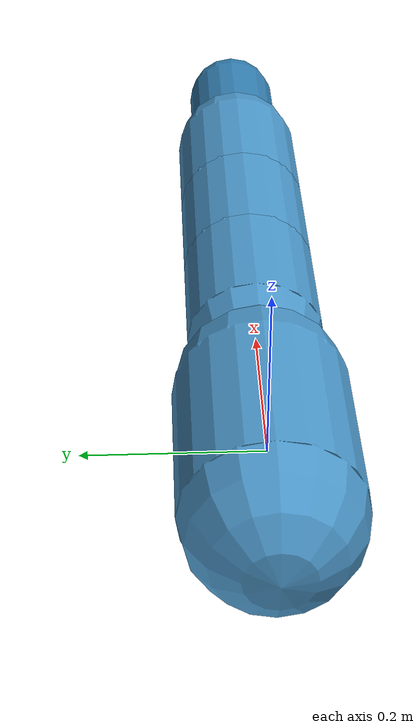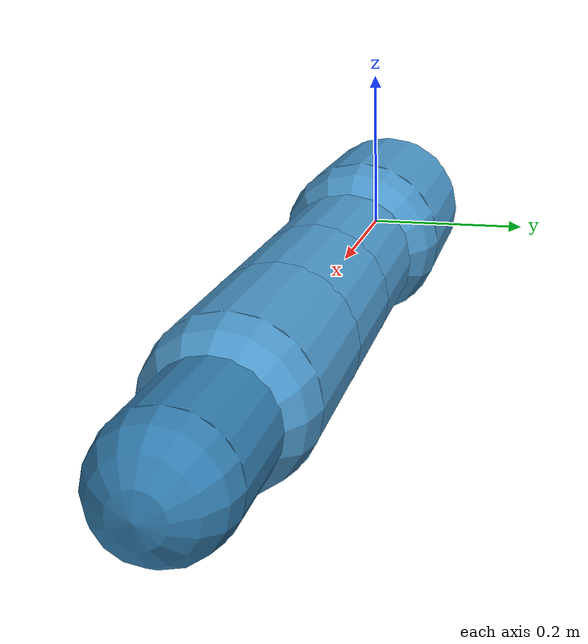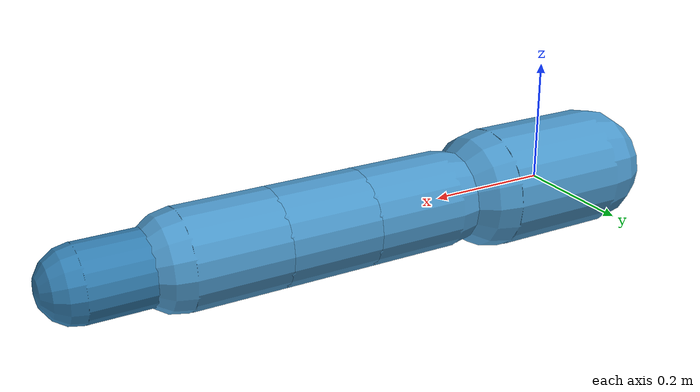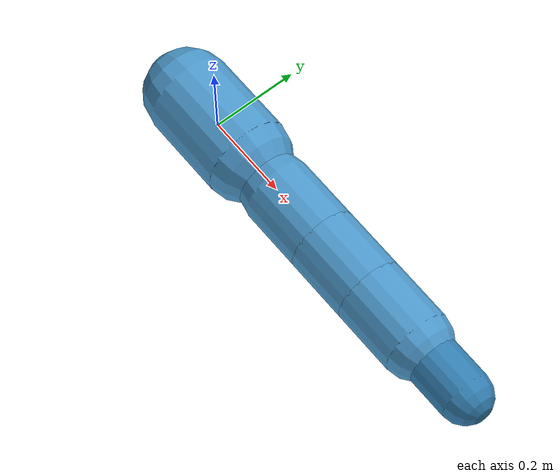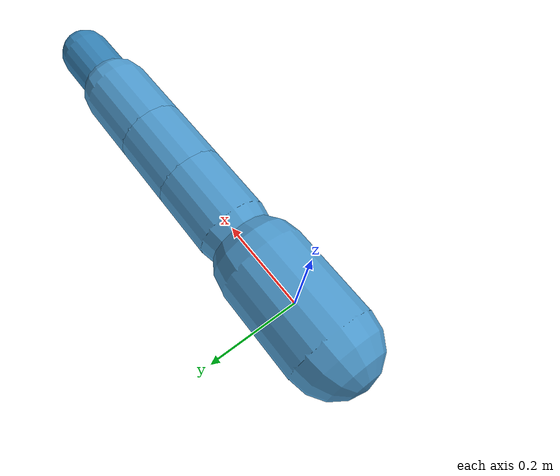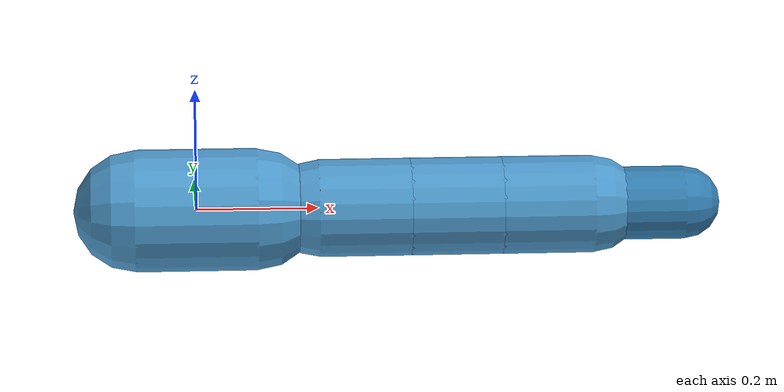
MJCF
<mujoco model="swimmer">
    <option timestep="0.01" gravity="0 0 0"/>

    <default>
        <joint armature="0.1" damping="2" limited="true"/>
        <geom contype="1" conaffinity="1" condim="3" friction="0.1 0.1 0.1" density="1000"/>
    </default>

    <worldbody>
        <!-- Fluid medium (no gravity, viscous damping simulated via joint damping) -->

        <!-- Head segment -->
        <body name="head" pos="0 0 0">
            <joint name="root" type="free"/>
            <geom name="head_geom" type="capsule" fromto="-0.1 0 0 0.1 0 0" size="0.1" rgba="0.3 0.6 0.8 1"/>

            <!-- Segment 1 -->
            <body name="seg1" pos="0.2 0 0">
                <joint name="joint1" type="hinge" axis="0 0 1" range="-100 100"/>
                <geom type="capsule" fromto="0 0 0 0.15 0 0" size="0.08" rgba="0.3 0.6 0.8 1"/>

                <!-- Segment 2 -->
                <body name="seg2" pos="0.15 0 0">
                    <joint name="joint2" type="hinge" axis="0 0 1" range="-100 100"/>
                    <geom type="capsule" fromto="0 0 0 0.15 0 0" size="0.08" rgba="0.3 0.6 0.8 1"/>

                    <!-- Segment 3 -->
                    <body name="seg3" pos="0.15 0 0">
                        <joint name="joint3" type="hinge" axis="0 0 1" range="-100 100"/>
                        <geom type="capsule" fromto="0 0 0 0.15 0 0" size="0.08" rgba="0.3 0.6 0.8 1"/>

                        <!-- Tail segment -->
                        <body name="tail" pos="0.15 0 0">
                            <joint name="joint4" type="hinge" axis="0 0 1" range="-100 100"/>
                            <geom type="capsule" fromto="0 0 0 0.15 0 0" size="0.06" rgba="0.2 0.5 0.7 1"/>
                        </body>
                    </body>
                </body>
            </body>
        </body>
    </worldbody>

    <actuator>
        <motor joint="joint1" ctrlrange="-1 1" gear="50"/>
        <motor joint="joint2" ctrlrange="-1 1" gear="50"/>
        <motor joint="joint3" ctrlrange="-1 1" gear="50"/>
        <motor joint="joint4" ctrlrange="-1 1" gear="50"/>
    </actuator>

    <sensor>
        <!-- Head sensors -->
        <framepos objtype="body" objname="head"/>
        <framequat objtype="body" objname="head"/>
        <framelinvel objtype="body" objname="head"/>
        <frameangvel objtype="body" objname="head"/>

        <!-- Joint sensors -->
        <jointpos joint="joint1"/>
        <jointpos joint="joint2"/>
        <jointpos joint="joint3"/>
        <jointpos joint="joint4"/>
        <jointvel joint="joint1"/>
        <jointvel joint="joint2"/>
        <jointvel joint="joint3"/>
        <jointvel joint="joint4"/>
    </sensor>
</mujoco>
